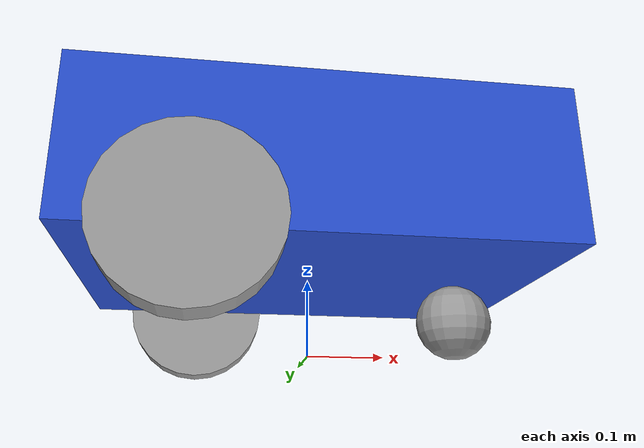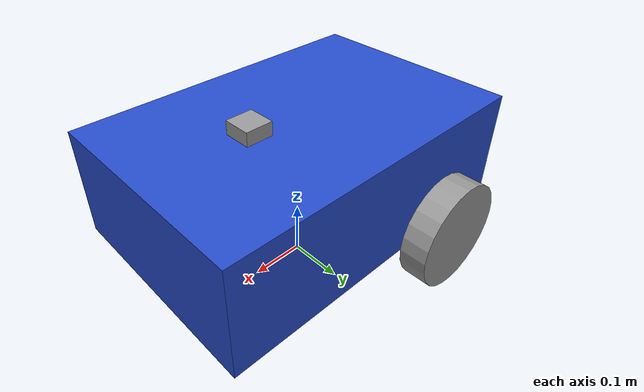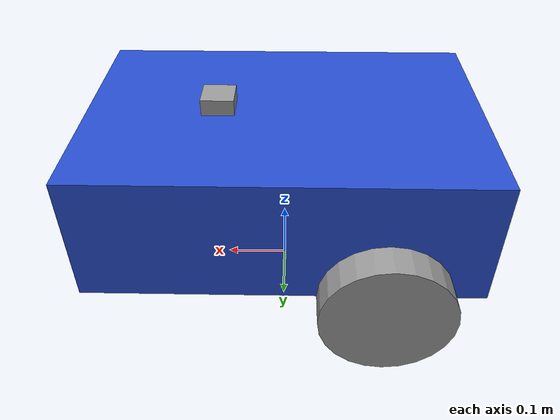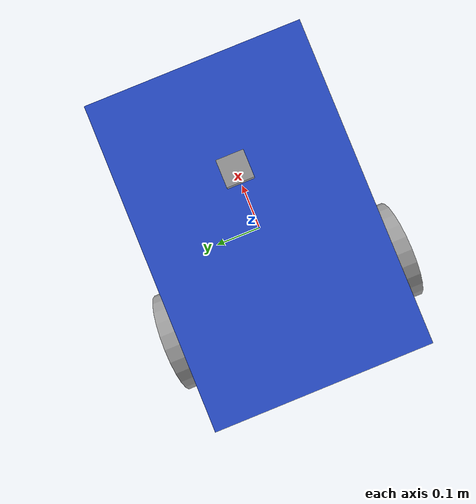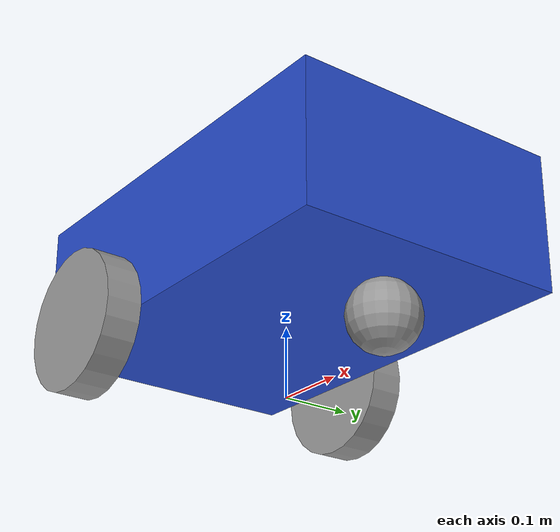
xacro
<?xml version="1.0"?>
<robot name="my_robot" xmlns:xacro="http://www.ros.org/wiki/xacro">

    <xacro:include filename="common_properties.xacro" />
    <xacro:include filename="mobile_base.xacro" />
    <xacro:include filename="mobile_base_gazebo.xacro" />
    <xacro:include filename="mobile_sensor_imu.xacro" />
    <xacro:include filename="mobile_sensor_gps1.xacro" />
    <xacro:include filename="wheel_encoder.xacro" />

</robot>

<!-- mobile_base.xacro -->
<robot xmlns:xacro="http://www.ros.org/wiki/xacro">

    <xacro:property name="base_length" value="0.6" />
    <xacro:property name="base_width" value="0.4" />
    <xacro:property name="base_height" value="0.2" />
    <xacro:property name="wheel_radius" value="0.1" />
    <xacro:property name="wheel_length" value="0.05" />

    <link name="base_footprint" />

    <link name="base_link">
        <visual>
            <geometry>
                <box size="${base_length} ${base_width} ${base_height}" />
            </geometry>
            <origin xyz="0 0 ${base_height / 2.0}" rpy="0 0 0" />
            <material name="blue" />
        </visual>
        <xacro:box_inertia m="5.0" l="${base_length}" w="${base_width}" h="${base_height}" xyz="0 0 ${base_height / 2.0}" rpy="0 0 0" />
        <collision>
            <geometry>
                <box size="${base_length} ${base_width} ${base_height}" />
            </geometry>
            <origin xyz="0 0 ${base_height / 2.0}" rpy="0 0 0" />
        </collision>
    </link>

    <xacro:macro name="wheel_link" params="prefix">
        <link name="${prefix}_wheel_link">
            <visual>
                <geometry>
                    <cylinder radius="${wheel_radius}" length="${wheel_length}" />
                </geometry>
                <origin xyz="0 0 0" rpy="${pi / 2.0} 0 0" />
                <material name="grey" />
            </visual>
            <xacro:cylinder_inertia m="1.0" r="${wheel_radius}" h="${wheel_length}" xyz="0 0 0" rpy="${pi / 2.0} 0 0" />
            <collision>
                <geometry>
                    <cylinder radius="${wheel_radius}" length="${wheel_length}" />
                </geometry>
                <origin xyz="0 0 0" rpy="${pi / 2.0} 0 0" />
            </collision>
        </link>
    </xacro:macro>

    <xacro:wheel_link prefix="right" />
    <xacro:wheel_link prefix="left" />

    <link name="caster_wheel_link">
        <visual>
            <geometry>
                <sphere radius="${wheel_radius / 2.0}" />
            </geometry>
            <origin xyz="0 0 0" rpy="0 0 0" />
            <material name="grey" />
        </visual>
        <xacro:sphere_inertia m="0.5" r="${wheel_radius / 2.0}" xyz="0 0 0" rpy="0 0 0" />
        <collision>
            <geometry>
                <sphere radius="${wheel_radius / 2.0}" />
            </geometry>
            <origin xyz="0 0 0" rpy="0 0 0" />
        </collision>
    </link>

    <joint name="base_joint" type="fixed">
        <parent link="base_footprint" />
        <child link="base_link" />
        <origin xyz="0 0 ${wheel_radius}" rpy="0 0 0"/>
    </joint>

    <joint name="base_right_wheel_joint" type="continuous">
        <parent link="base_link" />
        <child link="right_wheel_link" />
        <origin xyz="${-base_length / 4.0} ${-(base_width + wheel_length) / 2.0} 0" rpy="0 0 0" />
        <axis xyz="0 1 0" />
    </joint>

    <joint name="base_left_wheel_joint" type="continuous">
        <parent link="base_link" />
        <child link="left_wheel_link" />
        <origin xyz="${-base_length / 4.0} ${(base_width + wheel_length) / 2.0} 0" rpy="0 0 0" />
        <axis xyz="0 1 0" />
    </joint>

    <joint name="base_caster_wheel_joint" type="fixed">
        <parent link="base_link" />
        <child link="caster_wheel_link" />
        <origin xyz="${base_length / 3.0} 0 ${-wheel_radius / 2.0}" rpy="0 0 0" />
    </joint>

</robot>

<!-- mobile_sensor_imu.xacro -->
<robot xmlns:xacro="http://www.ros.org/wiki/xacro">

  <link name="imu_link">
    <inertial>
      <origin xyz="0 0 0" rpy="0 0 0"/>
      <mass value="0.1"/>
      <inertia ixx="0.0001" ixy="0" ixz="0" iyy="0.0001" iyz="0" izz="0.0001"/>
    </inertial>
    <visual>
      <geometry>
        <box size="0.05 0.05 0.05"/>
      </geometry>
      <material name="grey"/>
    </visual>
    <collision>
      <geometry>
        <box size="0.05 0.05 0.05"/>
      </geometry>
    </collision>
  </link>

  <joint name="imu_joint" type="fixed">
    <parent link="base_link"/>
    <child link="imu_link"/>
    <origin xyz="0.1 0 0.2" rpy="0 0 0"/>
  </joint>

  <gazebo reference="imu_link">
    <gravity>true</gravity>
    <sensor name="imu_sensor" type="imu">
      <always_on>true</always_on>
      <update_rate>100</update_rate>
      <visualize>true</visualize>
      <topic>__default_topic__</topic>
      <plugin filename="libgazebo_ros_imu_sensor.so" name="imu_sensor">
        <topicName>/imu/imu</topicName>
        <bodyName>imu_link</bodyName>
        <updateRateHZ>100.0</updateRateHZ>
        <gaussianNoise>0.0</gaussianNoise>
        <xyzOffset>0 0 0</xyzOffset>
        <rpyOffset>0 0 0</rpyOffset>
        <frameName>imu_link</frameName>
        <initialOrientationAsReference>false</initialOrientationAsReference>
        <magnetometerTopicName>/imu/compass</magnetometerTopicName>
        <publishMagnetometer>true</publishMagnetometer>
      </plugin>
      <pose>0 0 0 0 0 0</pose>
    </sensor>
  </gazebo>
</robot>

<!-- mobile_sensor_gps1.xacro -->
<robot xmlns:xacro="http://www.ros.org/wiki/xacro">

  <!-- Define a link for GPS sensor -->
  <link name="gps_link">
    <!-- Define inertial properties (not critical for GPS) -->
    <inertial>
      <origin xyz="0 0 0" rpy="0 0 0"/>
      <mass value="0.1"/>
      <inertia ixx="0.0001" ixy="0" ixz="0" iyy="0.0001" iyz="0" izz="0.0001"/>
    </inertial>
    <!-- Define visual properties (optional for GPS) -->
    <visual>
      <geometry>
        <box size="0.05 0.05 0.05"/>
      </geometry>
      <material name="grey"/>
    </visual>
    <!-- Define collision properties (optional for GPS) -->
    <collision>
      <geometry>
        <box size="0.05 0.05 0.05"/>
      </geometry>
    </collision>
  </link>

  <!-- Define a joint to attach GPS link to the base link of your robot -->
  <joint name="gps_joint" type="fixed">
    <parent link="base_link"/>
    <child link="gps_link"/>
    <!-- Adjust position relative to base_link if needed -->
    <origin xyz="0.1 0 0.2" rpy="0 0 0"/>
  </joint>

  <!-- Define Gazebo plugin for GPS sensor -->
  <gazebo reference="gps_link">
    <!-- Enable gravitational forces on the GPS link -->
    <gravity>true</gravity>
    <!-- Define the GPS sensor -->
    <sensor name="gps_sensor" type="gps">
      <!-- Keep the sensor always on -->
      <always_on>true</always_on>
      <!-- Update rate of the GPS sensor (Hz) -->
      <update_rate>10</update_rate>
      <!-- Enable visualization of GPS sensor in Gazebo -->
      <visualize>true</visualize>
      <!-- Topic name for publishing GPS data -->
      <topic>gps/fix</topic>
      <!-- Plugin details -->
      <plugin filename="libgazebo_ros_gps.so" name="gps_sensor">
        <!-- ROS topic to publish GPS data -->
        <topicName>/gps/fix</topicName>
        <!-- Link associated with the GPS sensor -->
        <bodyName>gps_link</bodyName>
        <!-- Update rate of the plugin -->
        <updateRateHZ>10.0</updateRateHZ>
        <!-- Gaussian noise level (optional) -->
        <gaussianNoise>0.0</gaussianNoise>
        <!-- XYZ offset (optional, usually 0 0 0) -->
        <xyzOffset>0 0 0</xyzOffset>
        <!-- RPY offset (optional, usually 0 0 0) -->
        <rpyOffset>0 0 0</rpyOffset>
        <!-- Frame name for the GPS sensor -->
        <frameName>gps_link</frameName>
        <!-- Initial orientation as reference (optional) -->
        <initialOrientationAsReference>false</initialOrientationAsReference>
      </plugin>
      <!-- Pose of the GPS sensor in the robot model -->
      <pose>0 0 0 0 0 0</pose>
    </sensor>
  </gazebo>
</robot>
